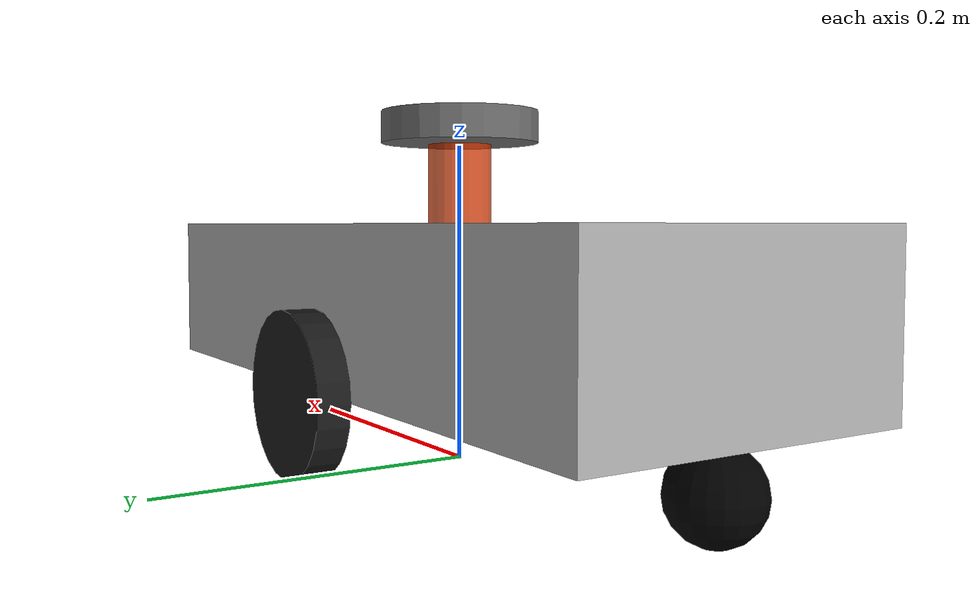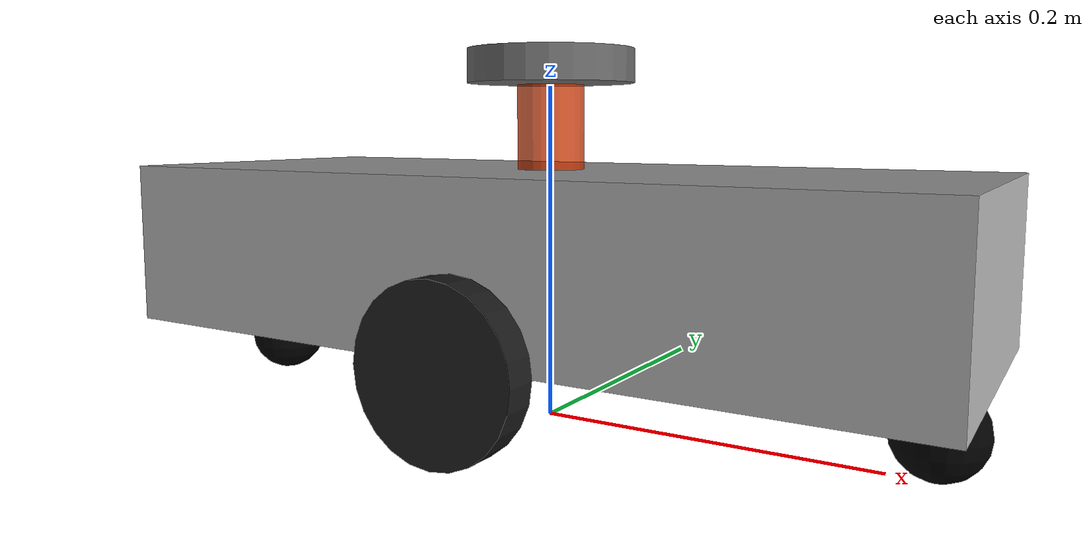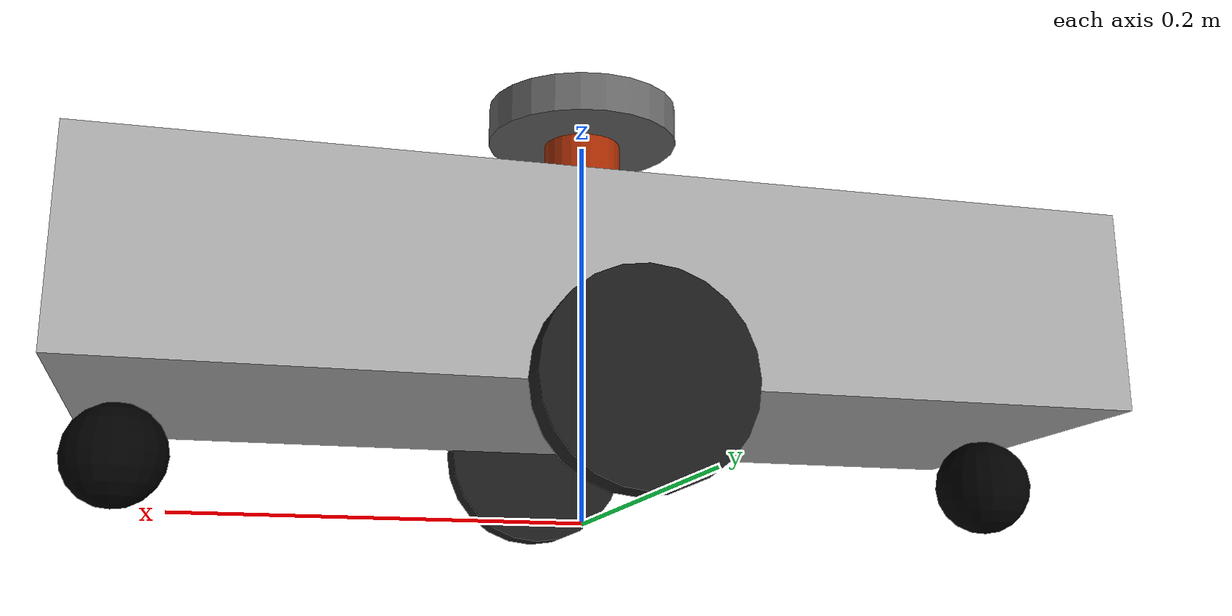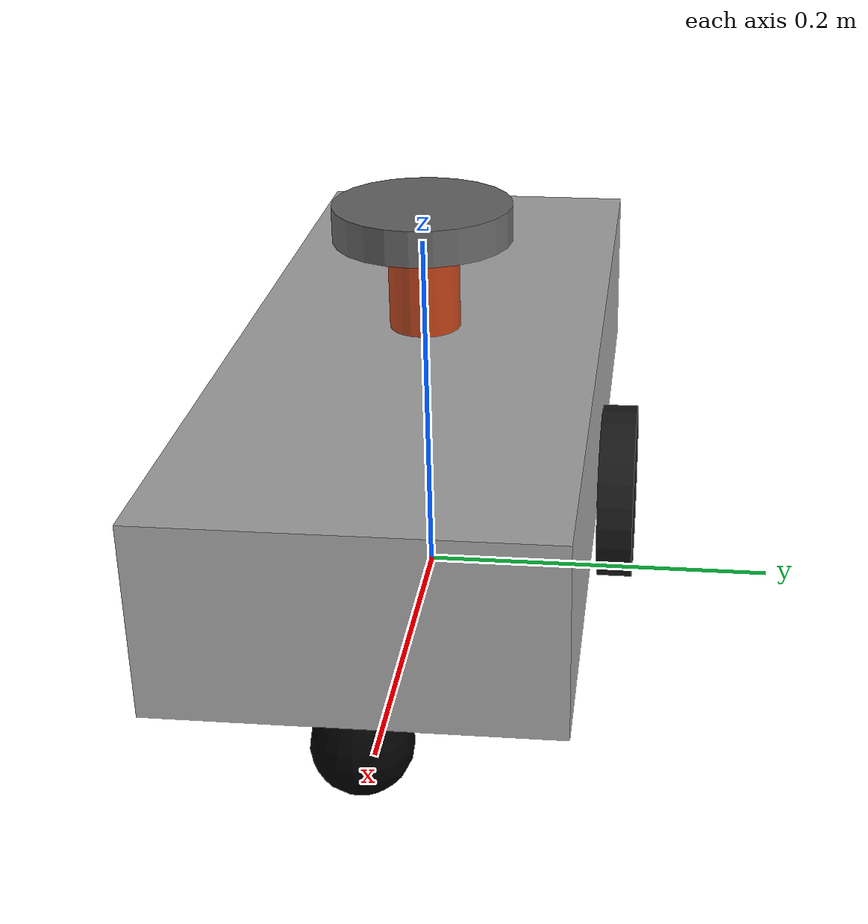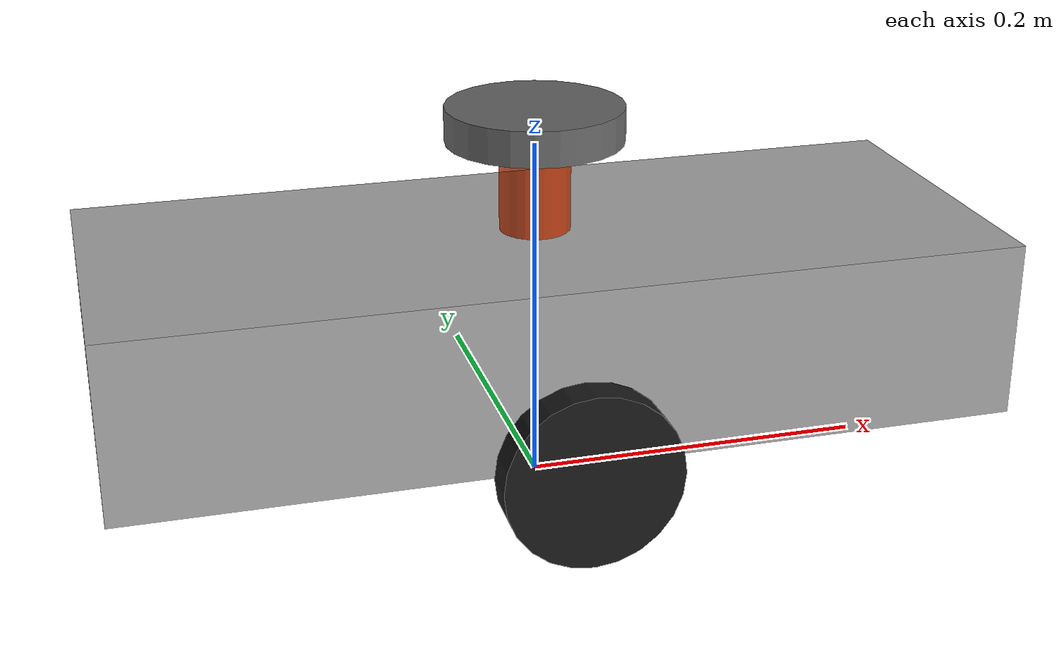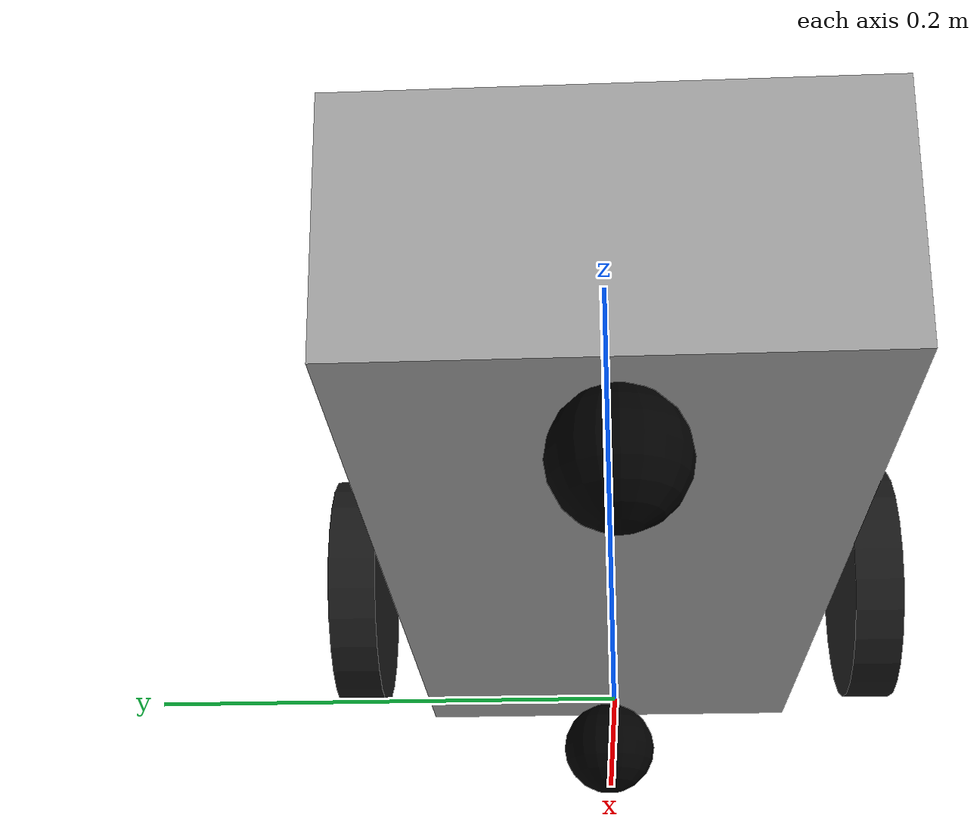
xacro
<?xml version="1.0" encoding="utf-8"?>

<robot name="USV_ship">

    <link name="base_footprint">
        <visual>
            <geometry>
                <sphere radius="0.001" />
            </geometry>
        </visual>
    </link>

    <link name="base_link">
        <visual>
            <geometry>
                <box size="0.5 0.2 0.1" />
            </geometry>
            <origin xyz="0 0 0" rpy="0 0 0" />
            <material name="base_color">
                <color rgba="0.650 0.650 0.650 1" />
            </material>
        </visual>
    </link>

    <link name="wheel_l">
        <visual>
            <geometry>
                <cylinder radius="0.05" length="0.02" />
            </geometry>
            <origin xyz="0 0 0" rpy="1.5705 0 0" />
            <material name="wheel_color">
                <color rgba="0.1 0.1 0.1 1" />
            </material>
        </visual>
    </link>

    <link name="wheel_r">
        <visual>
            <geometry>
                <cylinder radius="0.05" length="0.02" />
            </geometry>
            <origin xyz="0 0 0" rpy="1.5705  0 0" />
            <material name="wheel_color">
                <color rgba="0.1 0.1 0.1 1" />
            </material>
        </visual>
    </link>

    <link name="front_wheel">
        <visual>
            <geometry>
                <sphere radius="0.025" />
            </geometry>
            <origin xyz="0 0 0" rpy="0 0 0" />
            <material name="black">
                <color rgba="0.0 0.0 0.0 1.0" />
            </material>
        </visual>
    </link>

    <link name="back_wheel">
        <visual>
            <geometry>
                <sphere radius="0.025" />
            </geometry>
            <origin xyz="0 0 0" rpy="0 0 0" />
            <material name="black">
                <color rgba="0.0 0.0 0.0 1.0" />
            </material>
        </visual>
    </link>

    <link name="support">
            <visual>
                <geometry>
                    <cylinder radius="0.02" length="0.05" />
                </geometry>
                <origin xyz="0.0 0.0 0.0" rpy="0.0 0.0 0.0" />
                <material name="red">
                    <color rgba="0.8 0.2 0.0 0.8" />
                </material>
            </visual>
    </link>
    <link name="laser">
        <visual>
            <geometry>
                <cylinder radius="0.05" length="0.02" />
            </geometry>
            <origin xyz="0 0 0" rpy="0 0 0" />
            <material name="laser_color">
                <color rgba="0.4 0.4 0.4 1" />
            </material>
        </visual>
    </link>

        <!-- imu -->
    <link name="imu">
        <visual>
            <geometry>
                <cylinder radius="0.05" length="0.02" />
            </geometry>
            <origin xyz="0 0 0" rpy="0 0 0" />
            <material name="imu_color">
                <color rgba="0.4 0.4 0.4 1" />
            </material>
        </visual>
    </link>

        <!-- rtk -->
    <link name="gps">
         <visual>
            <geometry>
                <cylinder radius="0.05" length="0.02" />
            </geometry>
            <origin xyz="0 0 0" rpy="0 0 0" />
            <material name="gps_color">
                <color rgba="0.4 0.4 0.4 1" />
            </material>
        </visual>
    </link>

    <joint name="gps2base" type="fixed">
        <axis xyz="0 0 1"/>
        <origin xyz="0 0 0" rpy="0 0 0"/>
        <parent link="base_link"/>
        <child link="gps"/>
    </joint>

    <!-- imu -->
    <joint name="imu2base" type="fixed">
        <axis xyz="0 0 1"/>
        <origin xyz="0 0 0" rpy="0 0 0"/>
        <parent link="base_link"/>
        <child link="imu"/>
    </joint>

    <!-- joint -->
    <joint name="baselink2footprint" type="fixed">
        <origin xyz="0 0 0.101" rpy="0 0 0"/>
        <parent link="base_footprint" />
        <child  link="base_link" />
    </joint>

    <joint name="wheell2base" type="fixed">
        <origin xyz="0.0 -0.111 -0.05" rpy="0 0 0"/>
        <parent link="base_link" />
        <child  link="wheel_l" />
    </joint>

    <joint name="wheelr2base" type="fixed">
        <origin xyz="0.0 0.111 -0.05" rpy="0 0 0"/>
        <parent link="base_link" />
        <child  link="wheel_r" />
    </joint>

    <joint name="front_wheel2base_link" type="fixed">
        <parent link="base_link" />
        <child link="front_wheel" />
        <origin xyz="0.225 0 -0.075" />
        <axis xyz="1 1 1" />
    </joint>

    <joint name="back_wheel2base_link" type="fixed">
        <parent link="base_link" />
        <child link="back_wheel" />
        <origin xyz="-0.225 0 -0.075" />
        <axis xyz="1 1 1" />
    </joint>

    <joint name="support2base_link" type="fixed">
        <parent link="base_link" />
        <child link="support" />
        <origin xyz="0 0 0.075" />
    </joint>

    <joint name="laser2support" type="fixed">
        <origin xyz="0 0 0.111" rpy="0 0 0"/>
        <parent link="base_link" />
        <child  link="laser" />
    </joint>

</robot>
